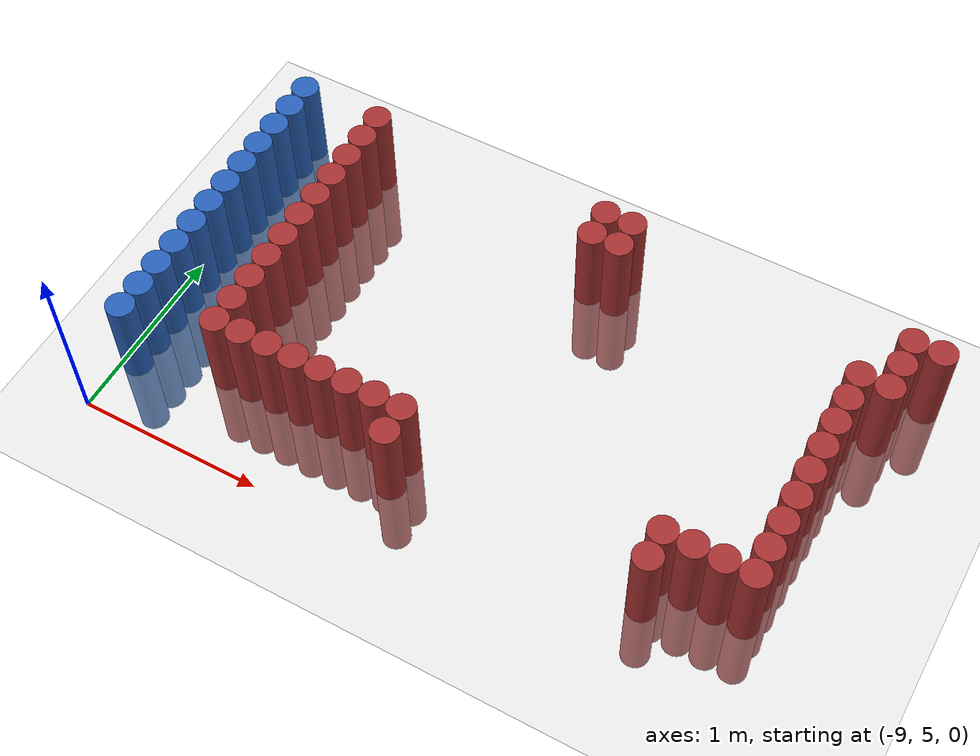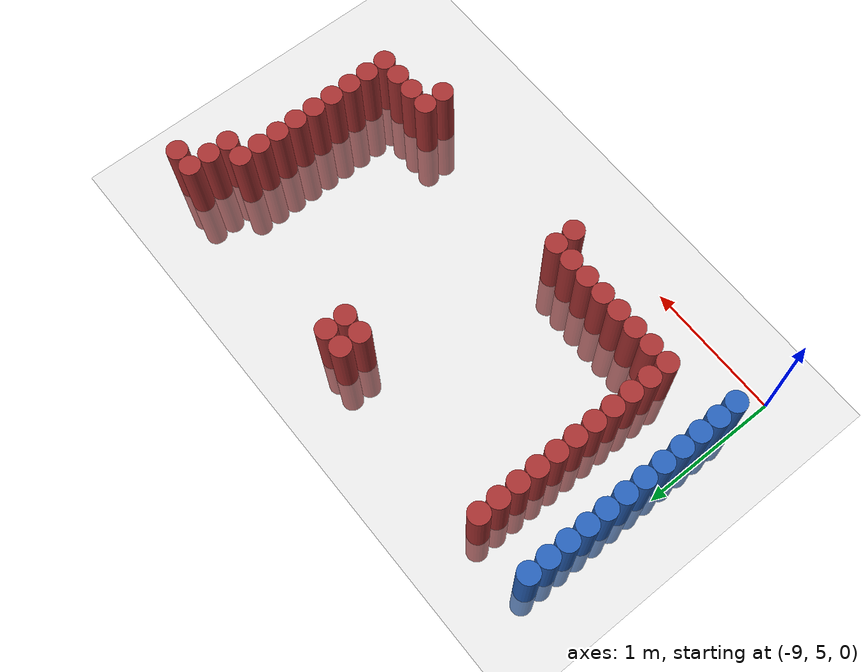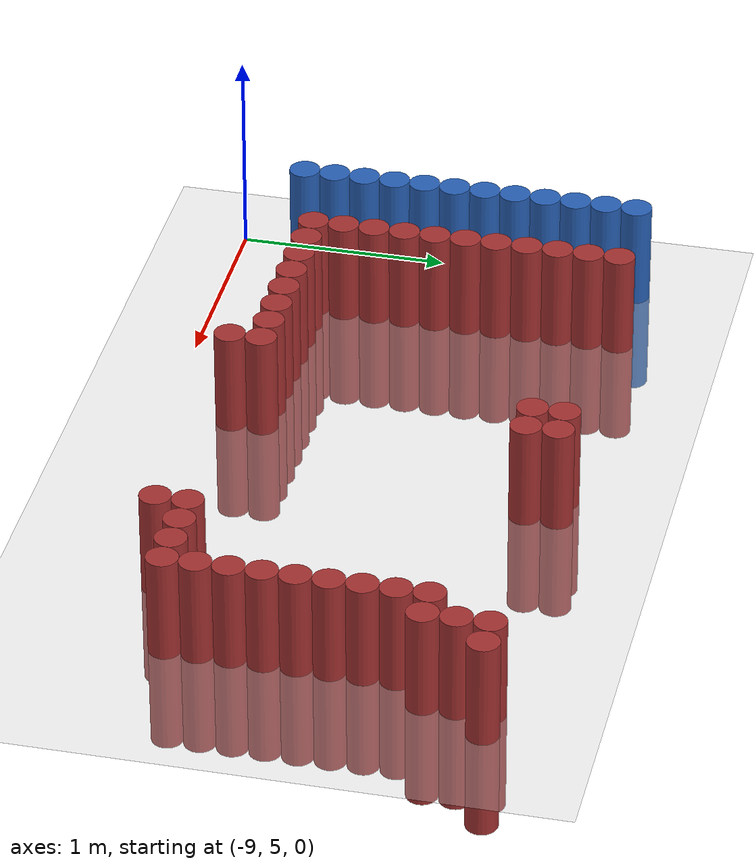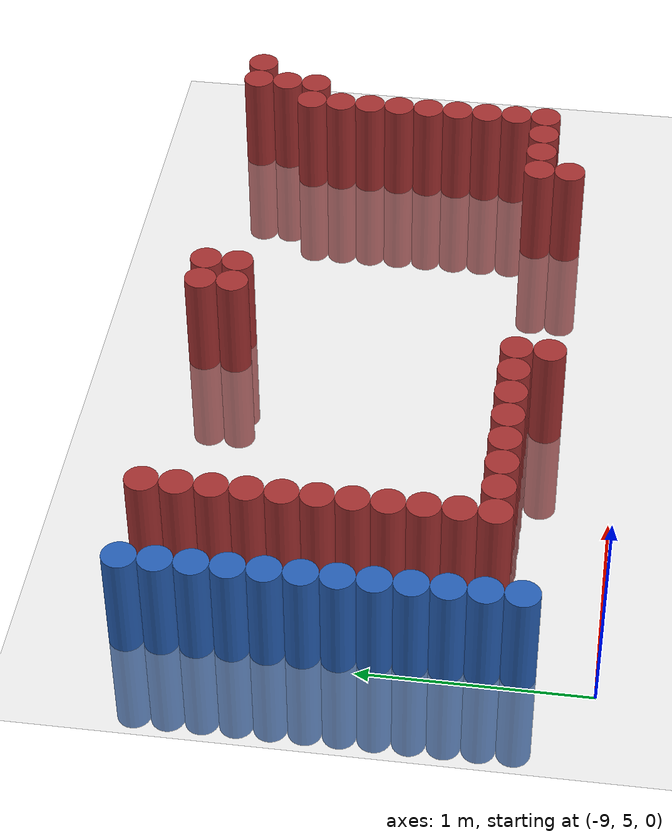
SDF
<sdf version="1.6">
 <world name="default">
  <model name="ground_plane">
   <static>1</static>
   <link name="link">
    <collision name="collision">
     <geometry><plane><normal>0 0 1</normal><size>100 100</size></plane></geometry>
     <surface><friction><ode><mu>100</mu><mu2>50</mu2></ode></friction></surface>
    </collision>
    <visual name="visual">
     <cast_shadows>0</cast_shadows>
     <geometry><plane><normal>0 0 1</normal><size>100 100</size></plane></geometry>
     <material>
      <script><uri>file://media/materials/scripts/gazebo.material</uri><name>Gazebo/Grey</name></script>
     </material>
    </visual>
   </link>
  </model>
  <model name="unit_cylinder_126">
   <static>1</static>
   <pose>-8.925000 5.325000 0.000000 0.000000 0.000000 0.000000</pose>
   <link name="link">
    <inertial>
     <mass>1</mass>
     <inertia><ixx>0.145833</ixx><ixy>0</ixy><ixz>0</ixz><iyy>0.145833</iyy><iyz>0</iyz><izz>0.125</izz></inertia>
    </inertial>
    <collision name="collision">
     <geometry><cylinder><radius>0.075000</radius><length>1</length></cylinder></geometry>
    </collision>
    <visual name="visual">
     <geometry><cylinder><radius>0.075000</radius><length>1</length></cylinder></geometry>
     <material>
      <ambient>0.152000 0.379000 0.720000 1</ambient>
      <diffuse>0.152000 0.379000 0.720000 1</diffuse>
     </material>
     <material>
      <script><name>Gazebo/Grey</name><uri>file://media/materials/scripts/gazebo.material</uri></script>
     </material>
    </visual>
   </link>
  </model>
  <model name="unit_cylinder_127">
   <static>1</static>
   <pose>-8.925000 5.475000 0.000000 0.000000 0.000000 0.000000</pose>
   <link name="link">
    <inertial>
     <mass>1</mass>
     <inertia><ixx>0.145833</ixx><ixy>0</ixy><ixz>0</ixz><iyy>0.145833</iyy><iyz>0</iyz><izz>0.125</izz></inertia>
    </inertial>
    <collision name="collision">
     <geometry><cylinder><radius>0.075000</radius><length>1</length></cylinder></geometry>
    </collision>
    <visual name="visual">
     <geometry><cylinder><radius>0.075000</radius><length>1</length></cylinder></geometry>
     <material>
      <ambient>0.152000 0.379000 0.720000 1</ambient>
      <diffuse>0.152000 0.379000 0.720000 1</diffuse>
     </material>
     <material>
      <script><name>Gazebo/Grey</name><uri>file://media/materials/scripts/gazebo.material</uri></script>
     </material>
    </visual>
   </link>
  </model>
  <model name="unit_cylinder_128">
   <static>1</static>
   <pose>-8.925000 5.625000 0.000000 0.000000 0.000000 0.000000</pose>
   <link name="link">
    <inertial>
     <mass>1</mass>
     <inertia><ixx>0.145833</ixx><ixy>0</ixy><ixz>0</ixz><iyy>0.145833</iyy><iyz>0</iyz><izz>0.125</izz></inertia>
    </inertial>
    <collision name="collision">
     <geometry><cylinder><radius>0.075000</radius><length>1</length></cylinder></geometry>
    </collision>
    <visual name="visual">
     <geometry><cylinder><radius>0.075000</radius><length>1</length></cylinder></geometry>
     <material>
      <ambient>0.152000 0.379000 0.720000 1</ambient>
      <diffuse>0.152000 0.379000 0.720000 1</diffuse>
     </material>
     <material>
      <script><name>Gazebo/Grey</name><uri>file://media/materials/scripts/gazebo.material</uri></script>
     </material>
    </visual>
   </link>
  </model>
  <model name="unit_cylinder_129">
   <static>1</static>
   <pose>-8.925000 5.775000 0.000000 0.000000 0.000000 0.000000</pose>
   <link name="link">
    <inertial>
     <mass>1</mass>
     <inertia><ixx>0.145833</ixx><ixy>0</ixy><ixz>0</ixz><iyy>0.145833</iyy><iyz>0</iyz><izz>0.125</izz></inertia>
    </inertial>
    <collision name="collision">
     <geometry><cylinder><radius>0.075000</radius><length>1</length></cylinder></geometry>
    </collision>
    <visual name="visual">
     <geometry><cylinder><radius>0.075000</radius><length>1</length></cylinder></geometry>
     <material>
      <ambient>0.152000 0.379000 0.720000 1</ambient>
      <diffuse>0.152000 0.379000 0.720000 1</diffuse>
     </material>
     <material>
      <script><name>Gazebo/Grey</name><uri>file://media/materials/scripts/gazebo.material</uri></script>
     </material>
    </visual>
   </link>
  </model>
  <model name="unit_cylinder_130">
   <static>1</static>
   <pose>-8.925000 5.925000 0.000000 0.000000 0.000000 0.000000</pose>
   <link name="link">
    <inertial>
     <mass>1</mass>
     <inertia><ixx>0.145833</ixx><ixy>0</ixy><ixz>0</ixz><iyy>0.145833</iyy><iyz>0</iyz><izz>0.125</izz></inertia>
    </inertial>
    <collision name="collision">
     <geometry><cylinder><radius>0.075000</radius><length>1</length></cylinder></geometry>
    </collision>
    <visual name="visual">
     <geometry><cylinder><radius>0.075000</radius><length>1</length></cylinder></geometry>
     <material>
      <ambient>0.152000 0.379000 0.720000 1</ambient>
      <diffuse>0.152000 0.379000 0.720000 1</diffuse>
     </material>
     <material>
      <script><name>Gazebo/Grey</name><uri>file://media/materials/scripts/gazebo.material</uri></script>
     </material>
    </visual>
   </link>
  </model>
  <model name="unit_cylinder_131">
   <static>1</static>
   <pose>-8.925000 6.075000 0.000000 0.000000 0.000000 0.000000</pose>
   <link name="link">
    <inertial>
     <mass>1</mass>
     <inertia><ixx>0.145833</ixx><ixy>0</ixy><ixz>0</ixz><iyy>0.145833</iyy><iyz>0</iyz><izz>0.125</izz></inertia>
    </inertial>
    <collision name="collision">
     <geometry><cylinder><radius>0.075000</radius><length>1</length></cylinder></geometry>
    </collision>
    <visual name="visual">
     <geometry><cylinder><radius>0.075000</radius><length>1</length></cylinder></geometry>
     <material>
      <ambient>0.152000 0.379000 0.720000 1</ambient>
      <diffuse>0.152000 0.379000 0.720000 1</diffuse>
     </material>
     <material>
      <script><name>Gazebo/Grey</name><uri>file://media/materials/scripts/gazebo.material</uri></script>
     </material>
    </visual>
   </link>
  </model>
  <model name="unit_cylinder_132">
   <static>1</static>
   <pose>-8.925000 6.225000 0.000000 0.000000 0.000000 0.000000</pose>
   <link name="link">
    <inertial>
     <mass>1</mass>
     <inertia><ixx>0.145833</ixx><ixy>0</ixy><ixz>0</ixz><iyy>0.145833</iyy><iyz>0</iyz><izz>0.125</izz></inertia>
    </inertial>
    <collision name="collision">
     <geometry><cylinder><radius>0.075000</radius><length>1</length></cylinder></geometry>
    </collision>
    <visual name="visual">
     <geometry><cylinder><radius>0.075000</radius><length>1</length></cylinder></geometry>
     <material>
      <ambient>0.152000 0.379000 0.720000 1</ambient>
      <diffuse>0.152000 0.379000 0.720000 1</diffuse>
     </material>
     <material>
      <script><name>Gazebo/Grey</name><uri>file://media/materials/scripts/gazebo.material</uri></script>
     </material>
    </visual>
   </link>
  </model>
  <model name="unit_cylinder_133">
   <static>1</static>
   <pose>-8.925000 6.375000 0.000000 0.000000 0.000000 0.000000</pose>
   <link name="link">
    <inertial>
     <mass>1</mass>
     <inertia><ixx>0.145833</ixx><ixy>0</ixy><ixz>0</ixz><iyy>0.145833</iyy><iyz>0</iyz><izz>0.125</izz></inertia>
    </inertial>
    <collision name="collision">
     <geometry><cylinder><radius>0.075000</radius><length>1</length></cylinder></geometry>
    </collision>
    <visual name="visual">
     <geometry><cylinder><radius>0.075000</radius><length>1</length></cylinder></geometry>
     <material>
      <ambient>0.152000 0.379000 0.720000 1</ambient>
      <diffuse>0.152000 0.379000 0.720000 1</diffuse>
     </material>
     <material>
      <script><name>Gazebo/Grey</name><uri>file://media/materials/scripts/gazebo.material</uri></script>
     </material>
    </visual>
   </link>
  </model>
  <model name="unit_cylinder_134">
   <static>1</static>
   <pose>-8.925000 6.525000 0.000000 0.000000 0.000000 0.000000</pose>
   <link name="link">
    <inertial>
     <mass>1</mass>
     <inertia><ixx>0.145833</ixx><ixy>0</ixy><ixz>0</ixz><iyy>0.145833</iyy><iyz>0</iyz><izz>0.125</izz></inertia>
    </inertial>
    <collision name="collision">
     <geometry><cylinder><radius>0.075000</radius><length>1</length></cylinder></geometry>
    </collision>
    <visual name="visual">
     <geometry><cylinder><radius>0.075000</radius><length>1</length></cylinder></geometry>
     <material>
      <ambient>0.152000 0.379000 0.720000 1</ambient>
      <diffuse>0.152000 0.379000 0.720000 1</diffuse>
     </material>
     <material>
      <script><name>Gazebo/Grey</name><uri>file://media/materials/scripts/gazebo.material</uri></script>
     </material>
    </visual>
   </link>
  </model>
  <model name="unit_cylinder_135">
   <static>1</static>
   <pose>-8.925000 6.675000 0.000000 0.000000 0.000000 0.000000</pose>
   <link name="link">
    <inertial>
     <mass>1</mass>
     <inertia><ixx>0.145833</ixx><ixy>0</ixy><ixz>0</ixz><iyy>0.145833</iyy><iyz>0</iyz><izz>0.125</izz></inertia>
    </inertial>
    <collision name="collision">
     <geometry><cylinder><radius>0.075000</radius><length>1</length></cylinder></geometry>
    </collision>
    <visual name="visual">
     <geometry><cylinder><radius>0.075000</radius><length>1</length></cylinder></geometry>
     <material>
      <ambient>0.152000 0.379000 0.720000 1</ambient>
      <diffuse>0.152000 0.379000 0.720000 1</diffuse>
     </material>
     <material>
      <script><name>Gazebo/Grey</name><uri>file://media/materials/scripts/gazebo.material</uri></script>
     </material>
    </visual>
   </link>
  </model>
  <model name="unit_cylinder_136">
   <static>1</static>
   <pose>-8.925000 6.825000 0.000000 0.000000 0.000000 0.000000</pose>
   <link name="link">
    <inertial>
     <mass>1</mass>
     <inertia><ixx>0.145833</ixx><ixy>0</ixy><ixz>0</ixz><iyy>0.145833</iyy><iyz>0</iyz><izz>0.125</izz></inertia>
    </inertial>
    <collision name="collision">
     <geometry><cylinder><radius>0.075000</radius><length>1</length></cylinder></geometry>
    </collision>
    <visual name="visual">
     <geometry><cylinder><radius>0.075000</radius><length>1</length></cylinder></geometry>
     <material>
      <ambient>0.152000 0.379000 0.720000 1</ambient>
      <diffuse>0.152000 0.379000 0.720000 1</diffuse>
     </material>
     <material>
      <script><name>Gazebo/Grey</name><uri>file://media/materials/scripts/gazebo.material</uri></script>
     </material>
    </visual>
   </link>
  </model>
  <model name="unit_cylinder_137">
   <static>1</static>
   <pose>-8.925000 6.975000 0.000000 0.000000 0.000000 0.000000</pose>
   <link name="link">
    <inertial>
     <mass>1</mass>
     <inertia><ixx>0.145833</ixx><ixy>0</ixy><ixz>0</ixz><iyy>0.145833</iyy><iyz>0</iyz><izz>0.125</izz></inertia>
    </inertial>
    <collision name="collision">
     <geometry><cylinder><radius>0.075000</radius><length>1</length></cylinder></geometry>
    </collision>
    <visual name="visual">
     <geometry><cylinder><radius>0.075000</radius><length>1</length></cylinder></geometry>
     <material>
      <ambient>0.152000 0.379000 0.720000 1</ambient>
      <diffuse>0.152000 0.379000 0.720000 1</diffuse>
     </material>
     <material>
      <script><name>Gazebo/Grey</name><uri>file://media/materials/scripts/gazebo.material</uri></script>
     </material>
    </visual>
   </link>
  </model>
  <model name="unit_cylinder_160">
   <static>1</static>
   <pose>-8.475000 5.475000 0.000000 0.000000 0.000000 0.000000</pose>
   <link name="link">
    <inertial>
     <mass>1</mass>
     <inertia><ixx>0.145833</ixx><ixy>0</ixy><ixz>0</ixz><iyy>0.145833</iyy><iyz>0</iyz><izz>0.125</izz></inertia>
    </inertial>
    <collision name="collision">
     <geometry><cylinder><radius>0.075000</radius><length>1</length></cylinder></geometry>
    </collision>
    <visual name="visual">
     <geometry><cylinder><radius>0.075000</radius><length>1</length></cylinder></geometry>
     <material>
      <ambient>0.648000 0.192000 0.192000 1</ambient>
      <diffuse>0.648000 0.192000 0.192000 1</diffuse>
     </material>
     <material>
      <script><name>Gazebo/Grey</name><uri>file://media/materials/scripts/gazebo.material</uri></script>
     </material>
    </visual>
   </link>
  </model>
  <model name="unit_cylinder_161">
   <static>1</static>
   <pose>-8.475000 5.625000 0.000000 0.000000 0.000000 0.000000</pose>
   <link name="link">
    <inertial>
     <mass>1</mass>
     <inertia><ixx>0.145833</ixx><ixy>0</ixy><ixz>0</ixz><iyy>0.145833</iyy><iyz>0</iyz><izz>0.125</izz></inertia>
    </inertial>
    <collision name="collision">
     <geometry><cylinder><radius>0.075000</radius><length>1</length></cylinder></geometry>
    </collision>
    <visual name="visual">
     <geometry><cylinder><radius>0.075000</radius><length>1</length></cylinder></geometry>
     <material>
      <ambient>0.648000 0.192000 0.192000 1</ambient>
      <diffuse>0.648000 0.192000 0.192000 1</diffuse>
     </material>
     <material>
      <script><name>Gazebo/Grey</name><uri>file://media/materials/scripts/gazebo.material</uri></script>
     </material>
    </visual>
   </link>
  </model>
  <model name="unit_cylinder_162">
   <static>1</static>
   <pose>-8.475000 5.775000 0.000000 0.000000 0.000000 0.000000</pose>
   <link name="link">
    <inertial>
     <mass>1</mass>
     <inertia><ixx>0.145833</ixx><ixy>0</ixy><ixz>0</ixz><iyy>0.145833</iyy><iyz>0</iyz><izz>0.125</izz></inertia>
    </inertial>
    <collision name="collision">
     <geometry><cylinder><radius>0.075000</radius><length>1</length></cylinder></geometry>
    </collision>
    <visual name="visual">
     <geometry><cylinder><radius>0.075000</radius><length>1</length></cylinder></geometry>
     <material>
      <ambient>0.648000 0.192000 0.192000 1</ambient>
      <diffuse>0.648000 0.192000 0.192000 1</diffuse>
     </material>
     <material>
      <script><name>Gazebo/Grey</name><uri>file://media/materials/scripts/gazebo.material</uri></script>
     </material>
    </visual>
   </link>
  </model>
  <model name="unit_cylinder_163">
   <static>1</static>
   <pose>-8.475000 5.925000 0.000000 0.000000 0.000000 0.000000</pose>
   <link name="link">
    <inertial>
     <mass>1</mass>
     <inertia><ixx>0.145833</ixx><ixy>0</ixy><ixz>0</ixz><iyy>0.145833</iyy><iyz>0</iyz><izz>0.125</izz></inertia>
    </inertial>
    <collision name="collision">
     <geometry><cylinder><radius>0.075000</radius><length>1</length></cylinder></geometry>
    </collision>
    <visual name="visual">
     <geometry><cylinder><radius>0.075000</radius><length>1</length></cylinder></geometry>
     <material>
      <ambient>0.648000 0.192000 0.192000 1</ambient>
      <diffuse>0.648000 0.192000 0.192000 1</diffuse>
     </material>
     <material>
      <script><name>Gazebo/Grey</name><uri>file://media/materials/scripts/gazebo.material</uri></script>
     </material>
    </visual>
   </link>
  </model>
  <model name="unit_cylinder_164">
   <static>1</static>
   <pose>-8.475000 6.075000 0.000000 0.000000 0.000000 0.000000</pose>
   <link name="link">
    <inertial>
     <mass>1</mass>
     <inertia><ixx>0.145833</ixx><ixy>0</ixy><ixz>0</ixz><iyy>0.145833</iyy><iyz>0</iyz><izz>0.125</izz></inertia>
    </inertial>
    <collision name="collision">
     <geometry><cylinder><radius>0.075000</radius><length>1</length></cylinder></geometry>
    </collision>
    <visual name="visual">
     <geometry><cylinder><radius>0.075000</radius><length>1</length></cylinder></geometry>
     <material>
      <ambient>0.648000 0.192000 0.192000 1</ambient>
      <diffuse>0.648000 0.192000 0.192000 1</diffuse>
     </material>
     <material>
      <script><name>Gazebo/Grey</name><uri>file://media/materials/scripts/gazebo.material</uri></script>
     </material>
    </visual>
   </link>
  </model>
  <model name="unit_cylinder_165">
   <static>1</static>
   <pose>-8.475000 6.225000 0.000000 0.000000 0.000000 0.000000</pose>
   <link name="link">
    <inertial>
     <mass>1</mass>
     <inertia><ixx>0.145833</ixx><ixy>0</ixy><ixz>0</ixz><iyy>0.145833</iyy><iyz>0</iyz><izz>0.125</izz></inertia>
    </inertial>
    <collision name="collision">
     <geometry><cylinder><radius>0.075000</radius><length>1</length></cylinder></geometry>
    </collision>
    <visual name="visual">
     <geometry><cylinder><radius>0.075000</radius><length>1</length></cylinder></geometry>
     <material>
      <ambient>0.648000 0.192000 0.192000 1</ambient>
      <diffuse>0.648000 0.192000 0.192000 1</diffuse>
     </material>
     <material>
      <script><name>Gazebo/Grey</name><uri>file://media/materials/scripts/gazebo.material</uri></script>
     </material>
    </visual>
   </link>
  </model>
  <model name="unit_cylinder_166">
   <static>1</static>
   <pose>-8.475000 6.375000 0.000000 0.000000 0.000000 0.000000</pose>
   <link name="link">
    <inertial>
     <mass>1</mass>
     <inertia><ixx>0.145833</ixx><ixy>0</ixy><ixz>0</ixz><iyy>0.145833</iyy><iyz>0</iyz><izz>0.125</izz></inertia>
    </inertial>
    <collision name="collision">
     <geometry><cylinder><radius>0.075000</radius><length>1</length></cylinder></geometry>
    </collision>
    <visual name="visual">
     <geometry><cylinder><radius>0.075000</radius><length>1</length></cylinder></geometry>
     <material>
      <ambient>0.648000 0.192000 0.192000 1</ambient>
      <diffuse>0.648000 0.192000 0.192000 1</diffuse>
     </material>
     <material>
      <script><name>Gazebo/Grey</name><uri>file://media/materials/scripts/gazebo.material</uri></script>
     </material>
    </visual>
   </link>
  </model>
  <model name="unit_cylinder_167">
   <static>1</static>
   <pose>-8.475000 6.525000 0.000000 0.000000 0.000000 0.000000</pose>
   <link name="link">
    <inertial>
     <mass>1</mass>
     <inertia><ixx>0.145833</ixx><ixy>0</ixy><ixz>0</ixz><iyy>0.145833</iyy><iyz>0</iyz><izz>0.125</izz></inertia>
    </inertial>
    <collision name="collision">
     <geometry><cylinder><radius>0.075000</radius><length>1</length></cylinder></geometry>
    </collision>
    <visual name="visual">
     <geometry><cylinder><radius>0.075000</radius><length>1</length></cylinder></geometry>
     <material>
      <ambient>0.648000 0.192000 0.192000 1</ambient>
      <diffuse>0.648000 0.192000 0.192000 1</diffuse>
     </material>
     <material>
      <script><name>Gazebo/Grey</name><uri>file://media/materials/scripts/gazebo.material</uri></script>
     </material>
    </visual>
   </link>
  </model>
  <model name="unit_cylinder_168">
   <static>1</static>
   <pose>-8.475000 6.675000 0.000000 0.000000 0.000000 0.000000</pose>
   <link name="link">
    <inertial>
     <mass>1</mass>
     <inertia><ixx>0.145833</ixx><ixy>0</ixy><ixz>0</ixz><iyy>0.145833</iyy><iyz>0</iyz><izz>0.125</izz></inertia>
    </inertial>
    <collision name="collision">
     <geometry><cylinder><radius>0.075000</radius><length>1</length></cylinder></geometry>
    </collision>
    <visual name="visual">
     <geometry><cylinder><radius>0.075000</radius><length>1</length></cylinder></geometry>
     <material>
      <ambient>0.648000 0.192000 0.192000 1</ambient>
      <diffuse>0.648000 0.192000 0.192000 1</diffuse>
     </material>
     <material>
      <script><name>Gazebo/Grey</name><uri>file://media/materials/scripts/gazebo.material</uri></script>
     </material>
    </visual>
   </link>
  </model>
  <model name="unit_cylinder_169">
   <static>1</static>
   <pose>-8.475000 6.825000 0.000000 0.000000 0.000000 0.000000</pose>
   <link name="link">
    <inertial>
     <mass>1</mass>
     <inertia><ixx>0.145833</ixx><ixy>0</ixy><ixz>0</ixz><iyy>0.145833</iyy><iyz>0</iyz><izz>0.125</izz></inertia>
    </inertial>
    <collision name="collision">
     <geometry><cylinder><radius>0.075000</radius><length>1</length></cylinder></geometry>
    </collision>
    <visual name="visual">
     <geometry><cylinder><radius>0.075000</radius><length>1</length></cylinder></geometry>
     <material>
      <ambient>0.648000 0.192000 0.192000 1</ambient>
      <diffuse>0.648000 0.192000 0.192000 1</diffuse>
     </material>
     <material>
      <script><name>Gazebo/Grey</name><uri>file://media/materials/scripts/gazebo.material</uri></script>
     </material>
    </visual>
   </link>
  </model>
  <model name="unit_cylinder_170">
   <static>1</static>
   <pose>-8.475000 6.975000 0.000000 0.000000 0.000000 0.000000</pose>
   <link name="link">
    <inertial>
     <mass>1</mass>
     <inertia><ixx>0.145833</ixx><ixy>0</ixy><ixz>0</ixz><iyy>0.145833</iyy><iyz>0</iyz><izz>0.125</izz></inertia>
    </inertial>
    <collision name="collision">
     <geometry><cylinder><radius>0.075000</radius><length>1</length></cylinder></geometry>
    </collision>
    <visual name="visual">
     <geometry><cylinder><radius>0.075000</radius><length>1</length></cylinder></geometry>
     <material>
      <ambient>0.648000 0.192000 0.192000 1</ambient>
      <diffuse>0.648000 0.192000 0.192000 1</diffuse>
     </material>
     <material>
      <script><name>Gazebo/Grey</name><uri>file://media/materials/scripts/gazebo.material</uri></script>
     </material>
    </visual>
   </link>
  </model>
  <model name="unit_cylinder_182">
   <static>1</static>
   <pose>-8.325000 5.475000 0.000000 0.000000 0.000000 0.000000</pose>
   <link name="link">
    <inertial>
     <mass>1</mass>
     <inertia><ixx>0.145833</ixx><ixy>0</ixy><ixz>0</ixz><iyy>0.145833</iyy><iyz>0</iyz><izz>0.125</izz></inertia>
    </inertial>
    <collision name="collision">
     <geometry><cylinder><radius>0.075000</radius><length>1</length></cylinder></geometry>
    </collision>
    <visual name="visual">
     <geometry><cylinder><radius>0.075000</radius><length>1</length></cylinder></geometry>
     <material>
      <ambient>0.648000 0.192000 0.192000 1</ambient>
      <diffuse>0.648000 0.192000 0.192000 1</diffuse>
     </material>
     <material>
      <script><name>Gazebo/Grey</name><uri>file://media/materials/scripts/gazebo.material</uri></script>
     </material>
    </visual>
   </link>
  </model>
  <model name="unit_cylinder_186">
   <static>1</static>
   <pose>-8.175000 5.475000 0.000000 0.000000 0.000000 0.000000</pose>
   <link name="link">
    <inertial>
     <mass>1</mass>
     <inertia><ixx>0.145833</ixx><ixy>0</ixy><ixz>0</ixz><iyy>0.145833</iyy><iyz>0</iyz><izz>0.125</izz></inertia>
    </inertial>
    <collision name="collision">
     <geometry><cylinder><radius>0.075000</radius><length>1</length></cylinder></geometry>
    </collision>
    <visual name="visual">
     <geometry><cylinder><radius>0.075000</radius><length>1</length></cylinder></geometry>
     <material>
      <ambient>0.648000 0.192000 0.192000 1</ambient>
      <diffuse>0.648000 0.192000 0.192000 1</diffuse>
     </material>
     <material>
      <script><name>Gazebo/Grey</name><uri>file://media/materials/scripts/gazebo.material</uri></script>
     </material>
    </visual>
   </link>
  </model>
  <model name="unit_cylinder_190">
   <static>1</static>
   <pose>-8.025000 5.475000 0.000000 0.000000 0.000000 0.000000</pose>
   <link name="link">
    <inertial>
     <mass>1</mass>
     <inertia><ixx>0.145833</ixx><ixy>0</ixy><ixz>0</ixz><iyy>0.145833</iyy><iyz>0</iyz><izz>0.125</izz></inertia>
    </inertial>
    <collision name="collision">
     <geometry><cylinder><radius>0.075000</radius><length>1</length></cylinder></geometry>
    </collision>
    <visual name="visual">
     <geometry><cylinder><radius>0.075000</radius><length>1</length></cylinder></geometry>
     <material>
      <ambient>0.648000 0.192000 0.192000 1</ambient>
      <diffuse>0.648000 0.192000 0.192000 1</diffuse>
     </material>
     <material>
      <script><name>Gazebo/Grey</name><uri>file://media/materials/scripts/gazebo.material</uri></script>
     </material>
    </visual>
   </link>
  </model>
  <model name="unit_cylinder_194">
   <static>1</static>
   <pose>-7.875000 5.475000 0.000000 0.000000 0.000000 0.000000</pose>
   <link name="link">
    <inertial>
     <mass>1</mass>
     <inertia><ixx>0.145833</ixx><ixy>0</ixy><ixz>0</ixz><iyy>0.145833</iyy><iyz>0</iyz><izz>0.125</izz></inertia>
    </inertial>
    <collision name="collision">
     <geometry><cylinder><radius>0.075000</radius><length>1</length></cylinder></geometry>
    </collision>
    <visual name="visual">
     <geometry><cylinder><radius>0.075000</radius><length>1</length></cylinder></geometry>
     <material>
      <ambient>0.648000 0.192000 0.192000 1</ambient>
      <diffuse>0.648000 0.192000 0.192000 1</diffuse>
     </material>
     <material>
      <script><name>Gazebo/Grey</name><uri>file://media/materials/scripts/gazebo.material</uri></script>
     </material>
    </visual>
   </link>
  </model>
  <model name="unit_cylinder_198">
   <static>1</static>
   <pose>-7.725000 5.475000 0.000000 0.000000 0.000000 0.000000</pose>
   <link name="link">
    <inertial>
     <mass>1</mass>
     <inertia><ixx>0.145833</ixx><ixy>0</ixy><ixz>0</ixz><iyy>0.145833</iyy><iyz>0</iyz><izz>0.125</izz></inertia>
    </inertial>
    <collision name="collision">
     <geometry><cylinder><radius>0.075000</radius><length>1</length></cylinder></geometry>
    </collision>
    <visual name="visual">
     <geometry><cylinder><radius>0.075000</radius><length>1</length></cylinder></geometry>
     <material>
      <ambient>0.648000 0.192000 0.192000 1</ambient>
      <diffuse>0.648000 0.192000 0.192000 1</diffuse>
     </material>
     <material>
      <script><name>Gazebo/Grey</name><uri>file://media/materials/scripts/gazebo.material</uri></script>
     </material>
    </visual>
   </link>
  </model>
  <model name="unit_cylinder_202">
   <static>1</static>
   <pose>-7.575000 5.475000 0.000000 0.000000 0.000000 0.000000</pose>
   <link name="link">
    <inertial>
     <mass>1</mass>
     <inertia><ixx>0.145833</ixx><ixy>0</ixy><ixz>0</ixz><iyy>0.145833</iyy><iyz>0</iyz><izz>0.125</izz></inertia>
    </inertial>
    <collision name="collision">
     <geometry><cylinder><radius>0.075000</radius><length>1</length></cylinder></geometry>
    </collision>
    <visual name="visual">
     <geometry><cylinder><radius>0.075000</radius><length>1</length></cylinder></geometry>
     <material>
      <ambient>0.648000 0.192000 0.192000 1</ambient>
      <diffuse>0.648000 0.192000 0.192000 1</diffuse>
     </material>
     <material>
      <script><name>Gazebo/Grey</name><uri>file://media/materials/scripts/gazebo.material</uri></script>
     </material>
    </visual>
   </link>
  </model>
  <model name="unit_cylinder_213">
   <static>1</static>
   <pose>-7.425000 5.325000 0.000000 0.000000 0.000000 0.000000</pose>
   <link name="link">
    <inertial>
     <mass>1</mass>
     <inertia><ixx>0.145833</ixx><ixy>0</ixy><ixz>0</ixz><iyy>0.145833</iyy><iyz>0</iyz><izz>0.125</izz></inertia>
    </inertial>
    <collision name="collision">
     <geometry><cylinder><radius>0.075000</radius><length>1</length></cylinder></geometry>
    </collision>
    <visual name="visual">
     <geometry><cylinder><radius>0.075000</radius><length>1</length></cylinder></geometry>
     <material>
      <ambient>0.648000 0.192000 0.192000 1</ambient>
      <diffuse>0.648000 0.192000 0.192000 1</diffuse>
     </material>
     <material>
      <script><name>Gazebo/Grey</name><uri>file://media/materials/scripts/gazebo.material</uri></script>
     </material>
    </visual>
   </link>
  </model>
  <model name="unit_cylinder_214">
   <static>1</static>
   <pose>-7.425000 5.475000 0.000000 0.000000 0.000000 0.000000</pose>
   <link name="link">
    <inertial>
     <mass>1</mass>
     <inertia><ixx>0.145833</ixx><ixy>0</ixy><ixz>0</ixz><iyy>0.145833</iyy><iyz>0</iyz><izz>0.125</izz></inertia>
    </inertial>
    <collision name="collision">
     <geometry><cylinder><radius>0.075000</radius><length>1</length></cylinder></geometry>
    </collision>
    <visual name="visual">
     <geometry><cylinder><radius>0.075000</radius><length>1</length></cylinder></geometry>
     <material>
      <ambient>0.648000 0.192000 0.192000 1</ambient>
      <diffuse>0.648000 0.192000 0.192000 1</diffuse>
     </material>
     <material>
      <script><name>Gazebo/Grey</name><uri>file://media/materials/scripts/gazebo.material</uri></script>
     </material>
    </visual>
   </link>
  </model>
  <model name="unit_cylinder_217">
   <static>1</static>
   <pose>-7.125000 6.825000 0.000000 0.000000 0.000000 0.000000</pose>
   <link name="link">
    <inertial>
     <mass>1</mass>
     <inertia><ixx>0.145833</ixx><ixy>0</ixy><ixz>0</ixz><iyy>0.145833</iyy><iyz>0</iyz><izz>0.125</izz></inertia>
    </inertial>
    <collision name="collision">
     <geometry><cylinder><radius>0.075000</radius><length>1</length></cylinder></geometry>
    </collision>
    <visual name="visual">
     <geometry><cylinder><radius>0.075000</radius><length>1</length></cylinder></geometry>
     <material>
      <ambient>0.648000 0.192000 0.192000 1</ambient>
      <diffuse>0.648000 0.192000 0.192000 1</diffuse>
     </material>
     <material>
      <script><name>Gazebo/Grey</name><uri>file://media/materials/scripts/gazebo.material</uri></script>
     </material>
    </visual>
   </link>
  </model>
  <model name="unit_cylinder_218">
   <static>1</static>
   <pose>-7.125000 6.975000 0.000000 0.000000 0.000000 0.000000</pose>
   <link name="link">
    <inertial>
     <mass>1</mass>
     <inertia><ixx>0.145833</ixx><ixy>0</ixy><ixz>0</ixz><iyy>0.145833</iyy><iyz>0</iyz><izz>0.125</izz></inertia>
    </inertial>
    <collision name="collision">
     <geometry><cylinder><radius>0.075000</radius><length>1</length></cylinder></geometry>
    </collision>
    <visual name="visual">
     <geometry><cylinder><radius>0.075000</radius><length>1</length></cylinder></geometry>
     <material>
      <ambient>0.648000 0.192000 0.192000 1</ambient>
      <diffuse>0.648000 0.192000 0.192000 1</diffuse>
     </material>
     <material>
      <script><name>Gazebo/Grey</name><uri>file://media/materials/scripts/gazebo.material</uri></script>
     </material>
    </visual>
   </link>
  </model>
  <model name="unit_cylinder_220">
   <static>1</static>
   <pose>-6.975000 6.825000 0.000000 0.000000 0.000000 0.000000</pose>
   <link name="link">
    <inertial>
     <mass>1</mass>
     <inertia><ixx>0.145833</ixx><ixy>0</ixy><ixz>0</ixz><iyy>0.145833</iyy><iyz>0</iyz><izz>0.125</izz></inertia>
    </inertial>
    <collision name="collision">
     <geometry><cylinder><radius>0.075000</radius><length>1</length></cylinder></geometry>
    </collision>
    <visual name="visual">
     <geometry><cylinder><radius>0.075000</radius><length>1</length></cylinder></geometry>
     <material>
      <ambient>0.648000 0.192000 0.192000 1</ambient>
      <diffuse>0.648000 0.192000 0.192000 1</diffuse>
     </material>
     <material>
      <script><name>Gazebo/Grey</name><uri>file://media/materials/scripts/gazebo.material</uri></script>
     </material>
    </visual>
   </link>
  </model>
  <model name="unit_cylinder_221">
   <static>1</static>
   <pose>-6.975000 6.975000 0.000000 0.000000 0.000000 0.000000</pose>
   <link name="link">
    <inertial>
     <mass>1</mass>
     <inertia><ixx>0.145833</ixx><ixy>0</ixy><ixz>0</ixz><iyy>0.145833</iyy><iyz>0</iyz><izz>0.125</izz></inertia>
    </inertial>
    <collision name="collision">
     <geometry><cylinder><radius>0.075000</radius><length>1</length></cylinder></geometry>
    </collision>
    <visual name="visual">
     <geometry><cylinder><radius>0.075000</radius><length>1</length></cylinder></geometry>
     <material>
      <ambient>0.648000 0.192000 0.192000 1</ambient>
      <diffuse>0.648000 0.192000 0.192000 1</diffuse>
     </material>
     <material>
      <script><name>Gazebo/Grey</name><uri>file://media/materials/scripts/gazebo.material</uri></script>
     </material>
    </visual>
   </link>
  </model>
  <model name="unit_cylinder_229">
   <static>1</static>
   <pose>-6.075000 5.325000 0.000000 0.000000 0.000000 0.000000</pose>
   <link name="link">
    <inertial>
     <mass>1</mass>
     <inertia><ixx>0.145833</ixx><ixy>0</ixy><ixz>0</ixz><iyy>0.145833</iyy><iyz>0</iyz><izz>0.125</izz></inertia>
    </inertial>
    <collision name="collision">
     <geometry><cylinder><radius>0.075000</radius><length>1</length></cylinder></geometry>
    </collision>
    <visual name="visual">
     <geometry><cylinder><radius>0.075000</radius><length>1</length></cylinder></geometry>
     <material>
      <ambient>0.648000 0.192000 0.192000 1</ambient>
      <diffuse>0.648000 0.192000 0.192000 1</diffuse>
     </material>
     <material>
      <script><name>Gazebo/Grey</name><uri>file://media/materials/scripts/gazebo.material</uri></script>
     </material>
    </visual>
   </link>
  </model>
  <model name="unit_cylinder_230">
   <static>1</static>
   <pose>-6.075000 5.475000 0.000000 0.000000 0.000000 0.000000</pose>
   <link name="link">
    <inertial>
     <mass>1</mass>
     <inertia><ixx>0.145833</ixx><ixy>0</ixy><ixz>0</ixz><iyy>0.145833</iyy><iyz>0</iyz><izz>0.125</izz></inertia>
    </inertial>
    <collision name="collision">
     <geometry><cylinder><radius>0.075000</radius><length>1</length></cylinder></geometry>
    </collision>
    <visual name="visual">
     <geometry><cylinder><radius>0.075000</radius><length>1</length></cylinder></geometry>
     <material>
      <ambient>0.648000 0.192000 0.192000 1</ambient>
      <diffuse>0.648000 0.192000 0.192000 1</diffuse>
     </material>
     <material>
      <script><name>Gazebo/Grey</name><uri>file://media/materials/scripts/gazebo.material</uri></script>
     </material>
    </visual>
   </link>
  </model>
  <model name="unit_cylinder_235">
   <static>1</static>
   <pose>-5.925000 5.475000 0.000000 0.000000 0.000000 0.000000</pose>
   <link name="link">
    <inertial>
     <mass>1</mass>
     <inertia><ixx>0.145833</ixx><ixy>0</ixy><ixz>0</ixz><iyy>0.145833</iyy><iyz>0</iyz><izz>0.125</izz></inertia>
    </inertial>
    <collision name="collision">
     <geometry><cylinder><radius>0.075000</radius><length>1</length></cylinder></geometry>
    </collision>
    <visual name="visual">
     <geometry><cylinder><radius>0.075000</radius><length>1</length></cylinder></geometry>
     <material>
      <ambient>0.648000 0.192000 0.192000 1</ambient>
      <diffuse>0.648000 0.192000 0.192000 1</diffuse>
     </material>
     <material>
      <script><name>Gazebo/Grey</name><uri>file://media/materials/scripts/gazebo.material</uri></script>
     </material>
    </visual>
   </link>
  </model>
  <model name="unit_cylinder_238">
   <static>1</static>
   <pose>-5.775000 5.475000 0.000000 0.000000 0.000000 0.000000</pose>
   <link name="link">
    <inertial>
     <mass>1</mass>
     <inertia><ixx>0.145833</ixx><ixy>0</ixy><ixz>0</ixz><iyy>0.145833</iyy><iyz>0</iyz><izz>0.125</izz></inertia>
    </inertial>
    <collision name="collision">
     <geometry><cylinder><radius>0.075000</radius><length>1</length></cylinder></geometry>
    </collision>
    <visual name="visual">
     <geometry><cylinder><radius>0.075000</radius><length>1</length></cylinder></geometry>
     <material>
      <ambient>0.648000 0.192000 0.192000 1</ambient>
      <diffuse>0.648000 0.192000 0.192000 1</diffuse>
     </material>
     <material>
      <script><name>Gazebo/Grey</name><uri>file://media/materials/scripts/gazebo.material</uri></script>
     </material>
    </visual>
   </link>
  </model>
  <model name="unit_cylinder_240">
   <static>1</static>
   <pose>-5.625000 5.475000 0.000000 0.000000 0.000000 0.000000</pose>
   <link name="link">
    <inertial>
     <mass>1</mass>
     <inertia><ixx>0.145833</ixx><ixy>0</ixy><ixz>0</ixz><iyy>0.145833</iyy><iyz>0</iyz><izz>0.125</izz></inertia>
    </inertial>
    <collision name="collision">
     <geometry><cylinder><radius>0.075000</radius><length>1</length></cylinder></geometry>
    </collision>
    <visual name="visual">
     <geometry><cylinder><radius>0.075000</radius><length>1</length></cylinder></geometry>
     <material>
      <ambient>0.648000 0.192000 0.192000 1</ambient>
      <diffuse>0.648000 0.192000 0.192000 1</diffuse>
     </material>
     <material>
      <script><name>Gazebo/Grey</name><uri>file://media/materials/scripts/gazebo.material</uri></script>
     </material>
    </visual>
   </link>
  </model>
  <model name="unit_cylinder_241">
   <static>1</static>
   <pose>-5.625000 5.625000 0.000000 0.000000 0.000000 0.000000</pose>
   <link name="link">
    <inertial>
     <mass>1</mass>
     <inertia><ixx>0.145833</ixx><ixy>0</ixy><ixz>0</ixz><iyy>0.145833</iyy><iyz>0</iyz><izz>0.125</izz></inertia>
    </inertial>
    <collision name="collision">
     <geometry><cylinder><radius>0.075000</radius><length>1</length></cylinder></geometry>
    </collision>
    <visual name="visual">
     <geometry><cylinder><radius>0.075000</radius><length>1</length></cylinder></geometry>
     <material>
      <ambient>0.648000 0.192000 0.192000 1</ambient>
      <diffuse>0.648000 0.192000 0.192000 1</diffuse>
     </material>
     <material>
      <script><name>Gazebo/Grey</name><uri>file://media/materials/scripts/gazebo.material</uri></script>
     </material>
    </visual>
   </link>
  </model>
  <model name="unit_cylinder_242">
   <static>1</static>
   <pose>-5.625000 5.775000 0.000000 0.000000 0.000000 0.000000</pose>
   <link name="link">
    <inertial>
     <mass>1</mass>
     <inertia><ixx>0.145833</ixx><ixy>0</ixy><ixz>0</ixz><iyy>0.145833</iyy><iyz>0</iyz><izz>0.125</izz></inertia>
    </inertial>
    <collision name="collision">
     <geometry><cylinder><radius>0.075000</radius><length>1</length></cylinder></geometry>
    </collision>
    <visual name="visual">
     <geometry><cylinder><radius>0.075000</radius><length>1</length></cylinder></geometry>
     <material>
      <ambient>0.648000 0.192000 0.192000 1</ambient>
      <diffuse>0.648000 0.192000 0.192000 1</diffuse>
     </material>
     <material>
      <script><name>Gazebo/Grey</name><uri>file://media/materials/scripts/gazebo.material</uri></script>
     </material>
    </visual>
   </link>
  </model>
  <model name="unit_cylinder_243">
   <static>1</static>
   <pose>-5.625000 5.925000 0.000000 0.000000 0.000000 0.000000</pose>
   <link name="link">
    <inertial>
     <mass>1</mass>
     <inertia><ixx>0.145833</ixx><ixy>0</ixy><ixz>0</ixz><iyy>0.145833</iyy><iyz>0</iyz><izz>0.125</izz></inertia>
    </inertial>
    <collision name="collision">
     <geometry><cylinder><radius>0.075000</radius><length>1</length></cylinder></geometry>
    </collision>
    <visual name="visual">
     <geometry><cylinder><radius>0.075000</radius><length>1</length></cylinder></geometry>
     <material>
      <ambient>0.648000 0.192000 0.192000 1</ambient>
      <diffuse>0.648000 0.192000 0.192000 1</diffuse>
     </material>
     <material>
      <script><name>Gazebo/Grey</name><uri>file://media/materials/scripts/gazebo.material</uri></script>
     </material>
    </visual>
   </link>
  </model>
  <model name="unit_cylinder_244">
   <static>1</static>
   <pose>-5.625000 6.075000 0.000000 0.000000 0.000000 0.000000</pose>
   <link name="link">
    <inertial>
     <mass>1</mass>
     <inertia><ixx>0.145833</ixx><ixy>0</ixy><ixz>0</ixz><iyy>0.145833</iyy><iyz>0</iyz><izz>0.125</izz></inertia>
    </inertial>
    <collision name="collision">
     <geometry><cylinder><radius>0.075000</radius><length>1</length></cylinder></geometry>
    </collision>
    <visual name="visual">
     <geometry><cylinder><radius>0.075000</radius><length>1</length></cylinder></geometry>
     <material>
      <ambient>0.648000 0.192000 0.192000 1</ambient>
      <diffuse>0.648000 0.192000 0.192000 1</diffuse>
     </material>
     <material>
      <script><name>Gazebo/Grey</name><uri>file://media/materials/scripts/gazebo.material</uri></script>
     </material>
    </visual>
   </link>
  </model>
  <model name="unit_cylinder_245">
   <static>1</static>
   <pose>-5.625000 6.225000 0.000000 0.000000 0.000000 0.000000</pose>
   <link name="link">
    <inertial>
     <mass>1</mass>
     <inertia><ixx>0.145833</ixx><ixy>0</ixy><ixz>0</ixz><iyy>0.145833</iyy><iyz>0</iyz><izz>0.125</izz></inertia>
    </inertial>
    <collision name="collision">
     <geometry><cylinder><radius>0.075000</radius><length>1</length></cylinder></geometry>
    </collision>
    <visual name="visual">
     <geometry><cylinder><radius>0.075000</radius><length>1</length></cylinder></geometry>
     <material>
      <ambient>0.648000 0.192000 0.192000 1</ambient>
      <diffuse>0.648000 0.192000 0.192000 1</diffuse>
     </material>
     <material>
      <script><name>Gazebo/Grey</name><uri>file://media/materials/scripts/gazebo.material</uri></script>
     </material>
    </visual>
   </link>
  </model>
  <model name="unit_cylinder_246">
   <static>1</static>
   <pose>-5.625000 6.375000 0.000000 0.000000 0.000000 0.000000</pose>
   <link name="link">
    <inertial>
     <mass>1</mass>
     <inertia><ixx>0.145833</ixx><ixy>0</ixy><ixz>0</ixz><iyy>0.145833</iyy><iyz>0</iyz><izz>0.125</izz></inertia>
    </inertial>
    <collision name="collision">
     <geometry><cylinder><radius>0.075000</radius><length>1</length></cylinder></geometry>
    </collision>
    <visual name="visual">
     <geometry><cylinder><radius>0.075000</radius><length>1</length></cylinder></geometry>
     <material>
      <ambient>0.648000 0.192000 0.192000 1</ambient>
      <diffuse>0.648000 0.192000 0.192000 1</diffuse>
     </material>
     <material>
      <script><name>Gazebo/Grey</name><uri>file://media/materials/scripts/gazebo.material</uri></script>
     </material>
    </visual>
   </link>
  </model>
  <model name="unit_cylinder_247">
   <static>1</static>
   <pose>-5.625000 6.525000 0.000000 0.000000 0.000000 0.000000</pose>
   <link name="link">
    <inertial>
     <mass>1</mass>
     <inertia><ixx>0.145833</ixx><ixy>0</ixy><ixz>0</ixz><iyy>0.145833</iyy><iyz>0</iyz><izz>0.125</izz></inertia>
    </inertial>
    <collision name="collision">
     <geometry><cylinder><radius>0.075000</radius><length>1</length></cylinder></geometry>
    </collision>
    <visual name="visual">
     <geometry><cylinder><radius>0.075000</radius><length>1</length></cylinder></geometry>
     <material>
      <ambient>0.648000 0.192000 0.192000 1</ambient>
      <diffuse>0.648000 0.192000 0.192000 1</diffuse>
     </material>
     <material>
      <script><name>Gazebo/Grey</name><uri>file://media/materials/scripts/gazebo.material</uri></script>
     </material>
    </visual>
   </link>
  </model>
  <model name="unit_cylinder_248">
   <static>1</static>
   <pose>-5.625000 6.675000 0.000000 0.000000 0.000000 0.000000</pose>
   <link name="link">
    <inertial>
     <mass>1</mass>
     <inertia><ixx>0.145833</ixx><ixy>0</ixy><ixz>0</ixz><iyy>0.145833</iyy><iyz>0</iyz><izz>0.125</izz></inertia>
    </inertial>
    <collision name="collision">
     <geometry><cylinder><radius>0.075000</radius><length>1</length></cylinder></geometry>
    </collision>
    <visual name="visual">
     <geometry><cylinder><radius>0.075000</radius><length>1</length></cylinder></geometry>
     <material>
      <ambient>0.648000 0.192000 0.192000 1</ambient>
      <diffuse>0.648000 0.192000 0.192000 1</diffuse>
     </material>
     <material>
      <script><name>Gazebo/Grey</name><uri>file://media/materials/scripts/gazebo.material</uri></script>
     </material>
    </visual>
   </link>
  </model>
  <model name="unit_cylinder_250">
   <static>1</static>
   <pose>-5.475000 6.675000 0.000000 0.000000 0.000000 0.000000</pose>
   <link name="link">
    <inertial>
     <mass>1</mass>
     <inertia><ixx>0.145833</ixx><ixy>0</ixy><ixz>0</ixz><iyy>0.145833</iyy><iyz>0</iyz><izz>0.125</izz></inertia>
    </inertial>
    <collision name="collision">
     <geometry><cylinder><radius>0.075000</radius><length>1</length></cylinder></geometry>
    </collision>
    <visual name="visual">
     <geometry><cylinder><radius>0.075000</radius><length>1</length></cylinder></geometry>
     <material>
      <ambient>0.648000 0.192000 0.192000 1</ambient>
      <diffuse>0.648000 0.192000 0.192000 1</diffuse>
     </material>
     <material>
      <script><name>Gazebo/Grey</name><uri>file://media/materials/scripts/gazebo.material</uri></script>
     </material>
    </visual>
   </link>
  </model>
  <model name="unit_cylinder_251">
   <static>1</static>
   <pose>-5.475000 6.825000 0.000000 0.000000 0.000000 0.000000</pose>
   <link name="link">
    <inertial>
     <mass>1</mass>
     <inertia><ixx>0.145833</ixx><ixy>0</ixy><ixz>0</ixz><iyy>0.145833</iyy><iyz>0</iyz><izz>0.125</izz></inertia>
    </inertial>
    <collision name="collision">
     <geometry><cylinder><radius>0.075000</radius><length>1</length></cylinder></geometry>
    </collision>
    <visual name="visual">
     <geometry><cylinder><radius>0.075000</radius><length>1</length></cylinder></geometry>
     <material>
      <ambient>0.648000 0.192000 0.192000 1</ambient>
      <diffuse>0.648000 0.192000 0.192000 1</diffuse>
     </material>
     <material>
      <script><name>Gazebo/Grey</name><uri>file://media/materials/scripts/gazebo.material</uri></script>
     </material>
    </visual>
   </link>
  </model>
  <model name="unit_cylinder_252">
   <static>1</static>
   <pose>-5.475000 6.975000 0.000000 0.000000 0.000000 0.000000</pose>
   <link name="link">
    <inertial>
     <mass>1</mass>
     <inertia><ixx>0.145833</ixx><ixy>0</ixy><ixz>0</ixz><iyy>0.145833</iyy><iyz>0</iyz><izz>0.125</izz></inertia>
    </inertial>
    <collision name="collision">
     <geometry><cylinder><radius>0.075000</radius><length>1</length></cylinder></geometry>
    </collision>
    <visual name="visual">
     <geometry><cylinder><radius>0.075000</radius><length>1</length></cylinder></geometry>
     <material>
      <ambient>0.648000 0.192000 0.192000 1</ambient>
      <diffuse>0.648000 0.192000 0.192000 1</diffuse>
     </material>
     <material>
      <script><name>Gazebo/Grey</name><uri>file://media/materials/scripts/gazebo.material</uri></script>
     </material>
    </visual>
   </link>
  </model>
  <model name="unit_cylinder_254">
   <static>1</static>
   <pose>-5.325000 6.975000 0.000000 0.000000 0.000000 0.000000</pose>
   <link name="link">
    <inertial>
     <mass>1</mass>
     <inertia><ixx>0.145833</ixx><ixy>0</ixy><ixz>0</ixz><iyy>0.145833</iyy><iyz>0</iyz><izz>0.125</izz></inertia>
    </inertial>
    <collision name="collision">
     <geometry><cylinder><radius>0.075000</radius><length>1</length></cylinder></geometry>
    </collision>
    <visual name="visual">
     <geometry><cylinder><radius>0.075000</radius><length>1</length></cylinder></geometry>
     <material>
      <ambient>0.648000 0.192000 0.192000 1</ambient>
      <diffuse>0.648000 0.192000 0.192000 1</diffuse>
     </material>
     <material>
      <script><name>Gazebo/Grey</name><uri>file://media/materials/scripts/gazebo.material</uri></script>
     </material>
    </visual>
   </link>
  </model>
 </world>
</sdf>
